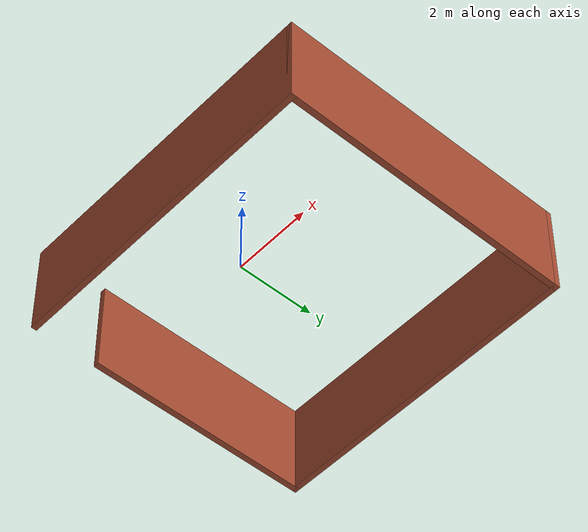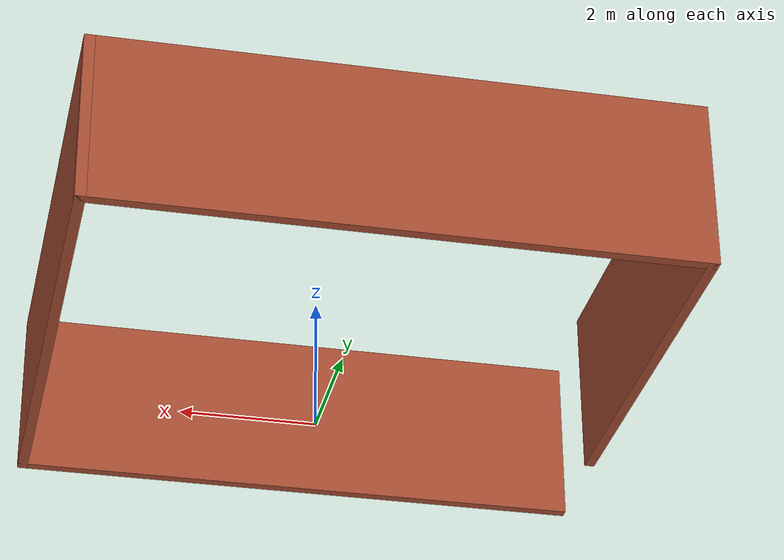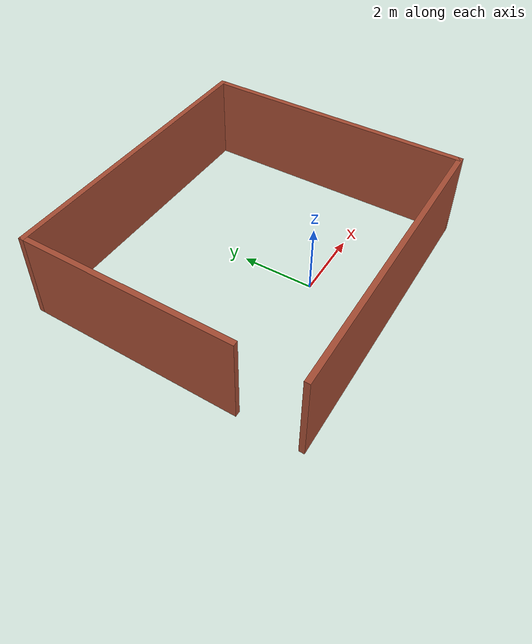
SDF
<?xml version='1.0'?>
<sdf version='1.6'>
  <model name='test2'>
    <pose frame=''>-0.115 1.62 0 0 -0 0</pose>
    <link name='Wall_0'>
      <collision name='Wall_0_Collision'>
        <geometry>
          <box>
            <size>8.5 0.15 2.5</size>
          </box>
        </geometry>
        <pose frame=''>0 0 1.25 0 -0 0</pose>
      </collision>
      <visual name='Wall_0_Visual'>
        <pose frame=''>0 0 1.25 0 -0 0</pose>
        <geometry>
          <box>
            <size>8.5 0.15 2.5</size>
          </box>
        </geometry>
        <material>
          <script>
            <uri>file://media/materials/scripts/gazebo.material</uri>
            <name>Gazebo/Bricks</name>
          </script>
          <ambient>1 1 1 1</ambient>
        </material>
        <meta>
          <layer>0</layer>
        </meta>
      </visual>
      <pose frame=''>0 -3.8 0 0 -0 0</pose>
    </link>
    <link name='Wall_1'>
      <collision name='Wall_1_Collision'>
        <geometry>
          <box>
            <size>7.75 0.15 2.5</size>
          </box>
        </geometry>
        <pose frame=''>0 0 1.25 0 -0 0</pose>
      </collision>
      <visual name='Wall_1_Visual'>
        <pose frame=''>0 0 1.25 0 -0 0</pose>
        <geometry>
          <box>
            <size>7.75 0.15 2.5</size>
          </box>
        </geometry>
        <material>
          <script>
            <uri>file://media/materials/scripts/gazebo.material</uri>
            <name>Gazebo/Bricks</name>
          </script>
          <ambient>1 1 1 1</ambient>
        </material>
        <meta>
          <layer>0</layer>
        </meta>
      </visual>
      <pose frame=''>4.175 0 0 0 -0 1.5708</pose>
    </link>
    <link name='Wall_2'>
      <collision name='Wall_2_Collision'>
        <geometry>
          <box>
            <size>8.5 0.15 2.5</size>
          </box>
        </geometry>
        <pose frame=''>0 0 1.25 0 -0 0</pose>
      </collision>
      <visual name='Wall_2_Visual'>
        <pose frame=''>0 0 1.25 0 -0 0</pose>
        <geometry>
          <box>
            <size>8.5 0.15 2.5</size>
          </box>
        </geometry>
        <material>
          <script>
            <uri>file://media/materials/scripts/gazebo.material</uri>
            <name>Gazebo/Bricks</name>
          </script>
          <ambient>1 1 1 1</ambient>
        </material>
        <meta>
          <layer>0</layer>
        </meta>
      </visual>
      <pose frame=''>0 3.8 0 0 -0 3.14159</pose>
    </link>
    <link name='Wall_3'>
      <collision name='Wall_3_Collision'>
        <geometry>
          <box>
            <size>6 0.15 2.5</size>
          </box>
        </geometry>
        <pose frame=''>0 0 1.25 0 -0 0</pose>
      </collision>
      <visual name='Wall_3_Visual'>
        <pose frame=''>0 0 1.25 0 -0 0</pose>
        <geometry>
          <box>
            <size>6 0.15 2.5</size>
          </box>
        </geometry>
        <material>
          <script>
            <uri>file://media/materials/scripts/gazebo.material</uri>
            <name>Gazebo/Bricks</name>
          </script>
          <ambient>1 1 1 1</ambient>
        </material>
        <meta>
          <layer>0</layer>
        </meta>
      </visual>
      <pose frame=''>-4.175 0.875 0 0 -0 -1.5708</pose>
    </link>
    <static>1</static>
  </model>
</sdf>
